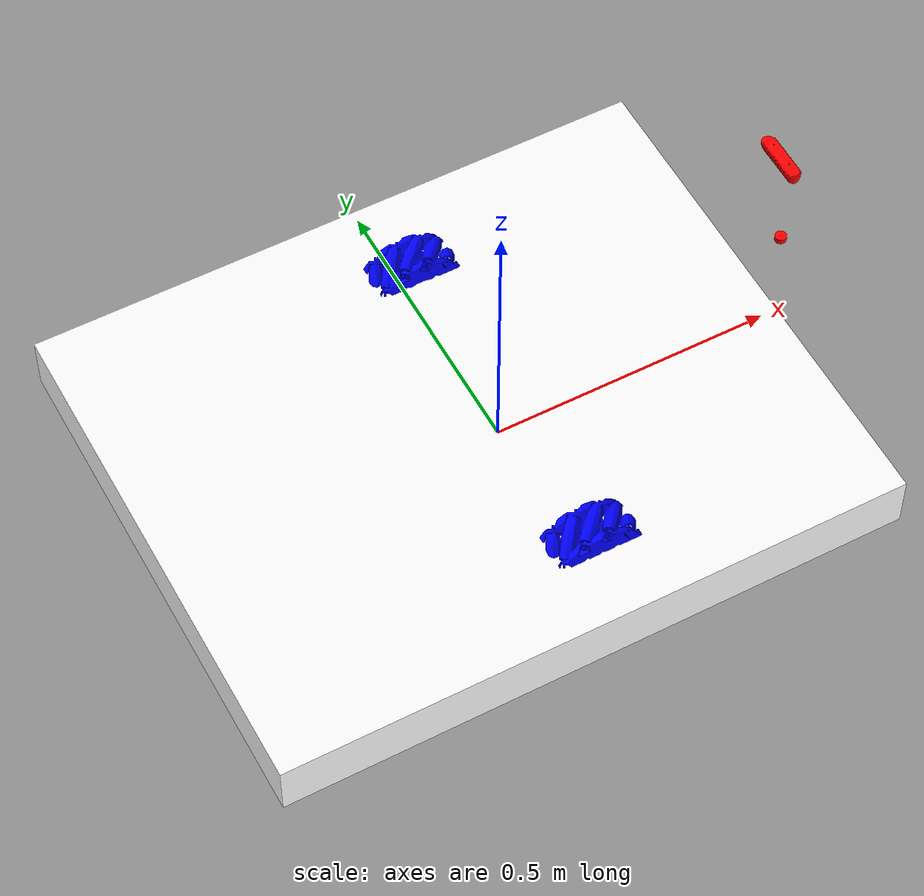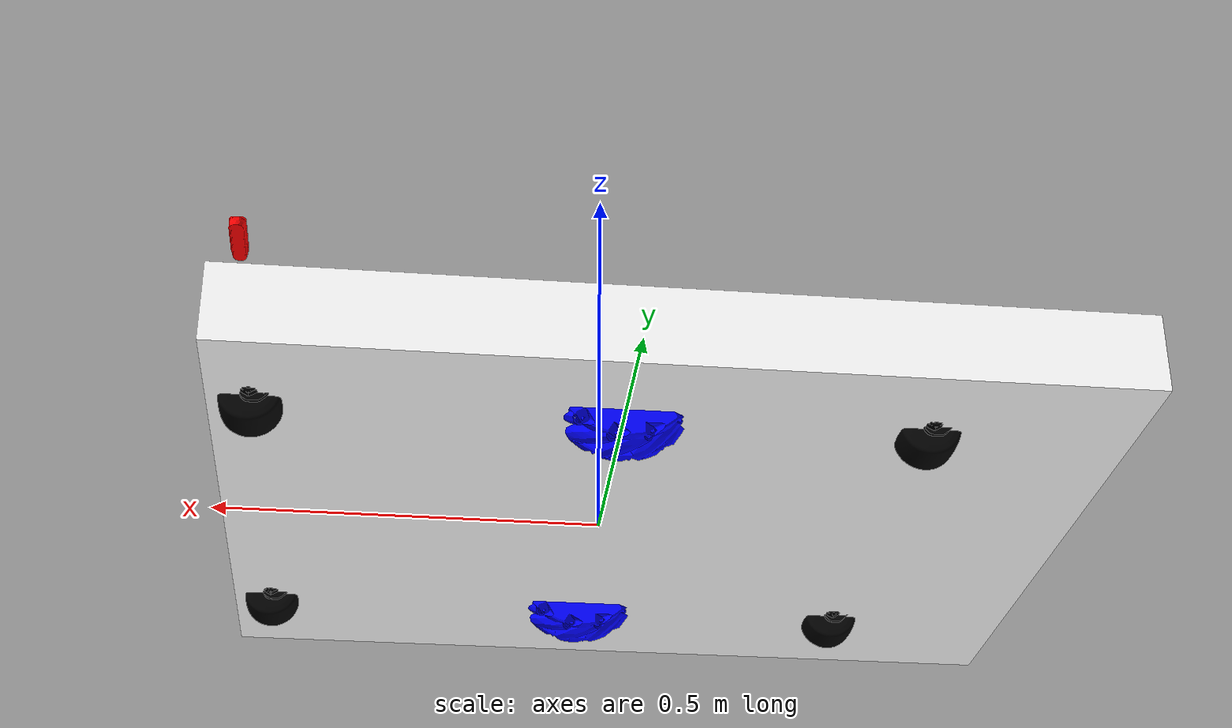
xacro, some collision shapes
<?xml version="1.0"?>
<robot xmlns:xacro="http://www.ros.org/wiki/xacro" name="robot">
  <!-- 로봇 정의에서 필요한 xacro 파일들 포함 -->
  <xacro:include filename="robot_core.xacro" />
  <xacro:include filename="gazebo_control.xacro" />
  <xacro:include filename="lidar.xacro" />
  <xacro:include filename="camera.xacro" />
</robot>

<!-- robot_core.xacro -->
<robot xmlns:xacro="http://www.ros.org/wiki/xacro" name="urdf_tutorial">

    <!-- MACROS -->
    <xacro:include filename="macros.xacro"/>

    <!-- COLOR -->
    <material name="white">
        <color rgba="1 1 1 1" />
    </material>

    <material name="blue">
        <color rgba="0 0 1 1"/>
    </material>

    <material name="black">
        <color rgba="0 0 0 1"/>
    </material>

    <material name="red">
        <color rgba="1 0 0 1"/>
    </material>

    <!-- BASE LINK -->
    <link name="base_link">
    </link>
    <!--BASE_FOOTPRINT LINK-->
    <joint name="base_footprint_joint" type="fixed">
        <parent link="base_link"/>
        <child link="base_footprint"/>
        <origin xyz="0 0 0" rpy="0 0 0"/>
    </joint>
    <link name="base_footprint"></link>

    <!-- BODY LINK -->
    <joint name="body_joint" type="fixed">
        <parent link="base_link"/>
        <child link="body"/>
        <origin xyz="0 0 0"/>
    </joint>

    <link name="body">
        <visual>
            <origin xyz="0.0 0 0.13"/>

            <geometry>
                <mesh filename="package://my_robot_description/meshes/bases/Main.stl" scale="0.01 0.01 0.01"/>
            </geometry>
            <material name="white"/>
        </visual>
        <collision>
            <origin xyz="-0.064 0 0.047" rpy="0 0 0"/>
            <geometry>
                <box size="1.1 0.9 0.1"/>
            </geometry>
        </collision>
        <xacro:inertial_box mass="0.5" x="0.2" y="0.1" z="0.06">
            <origin xyz="0.0 0 0.13" rpy="0 0 0"/>
        </xacro:inertial_box>
    </link>

    <gazebo reference="body">
        <material>Gazebo/White</material>
    </gazebo>

    <!-- LEFT WHEEL LINK -->
    <joint name="left_wheel_joint" type="continuous">
        <parent link="base_link"/>
        <child link="left_wheel"/>
        <origin xyz="0 0.3 0.05" rpy="-${pi/2} 0 0" />
        <axis xyz="0 0 1"/>
    </joint>

    <link name="left_wheel">
        <visual>
            <origin xyz="0 0 0" rpy="0 -${pi/2} 0"/>
            <geometry>
                <mesh filename="package://my_robot_description/meshes/wheels/Front_left_wheel.stl" scale="0.01 0.01 0.01"/>
            </geometry>
            <material name="blue"/>
        </visual>
        <collision>
            <geometry>
                <cylinder radius="0.08" length="0.08"/>
            </geometry>
        </collision>
        <xacro:inertial_cylinder mass="0.1" length="0.03" radius="0.03">
            <origin xyz="0 0 0" rpy="0 0 0"/>
        </xacro:inertial_cylinder>
    </link>

    <gazebo reference="left_wheel">
        <material>Gazebo/Black</material>
    </gazebo>

    <!-- RIGHT WHEEL LINK -->
    <joint name="right_wheel_joint" type="continuous">
        <parent link="base_link"/>
        <child link="right_wheel"/>
        <origin xyz="0 -0.3 0.05" rpy="${pi/2} 0 0" />
        <axis xyz="0 0 -1"/>
    </joint>

    <link name="right_wheel">
        <visual>
            <origin xyz="0 0 0" rpy="0 -${pi/2} 0"/>
            <geometry>
                <mesh filename="package://my_robot_description/meshes/wheels/Front_right_wheel.stl" scale="0.01 0.01 0.01"/>
            </geometry>
            <material name="blue"/>
        </visual>
        <collision>
            <geometry>
                <cylinder radius="0.08" length="0.08"/>
            </geometry>
        </collision>
        <xacro:inertial_cylinder mass="0.1" length="0.03" radius="0.03">
            <origin xyz="0 0 0" rpy="0 0 0"/>
        </xacro:inertial_cylinder>
    </link>

    <gazebo reference="right_wheel">
        <material>Gazebo/Black</material>
    </gazebo>

    <!-- CASTER WHEEL1 LINK -->
    <joint name="caster_wheel1_joint" type="fixed">
        <parent link="body"/>
        <child link="caster1_wheel"/>
        <origin xyz="0.4 0.3 0"/>
    </joint>

    <link name="caster1_wheel">
        <visual>
            <origin xyz="0 0 0.08" rpy="0 0 0"/>
            <geometry>
                <mesh filename="package://my_robot_description/meshes/castor.stl" scale="0.01 0.01 0.01"/>
                <sphere radius="0.03"/>
            </geometry>
            <material name="black"/>
        </visual>
        <collision>
            <geometry>
                <sphere radius="0.03"/>
            </geometry>
        </collision>
        <xacro:inertial_sphere mass="0.1" radius="0.03">
            <origin xyz="0 0 0" rpy="0 0 0"/>
        </xacro:inertial_sphere>
    </link>

    <gazebo reference="caster1_wheel">
        <material>Gazebo/Blue</material>

        <mu1 value="0.001"/>
        <mu2 value="0.001"/>
    </gazebo>

    <!-- CASTER WHEEL2 front LINK -->
    <joint name="caster_wheel2_joint" type="fixed">
        <parent link="body"/>
        <child link="caster2_wheel"/>
        <origin xyz="0.4 -0.3 0"/>
    </joint>

    <link name="caster2_wheel">
        <visual>
            <origin xyz="0 0 0.08" rpy="0 0 0"/>
            <geometry>
                <mesh filename="package://my_robot_description/meshes/castor.stl" scale="0.01 0.01 0.01"/>
                <sphere radius="0.03"/>
            </geometry>
            <material name="black"/>
        </visual>
        <collision>
            <geometry>
                <sphere radius="0.03"/>
            </geometry>
        </collision>
        <xacro:inertial_sphere mass="0.1" radius="0.03">
            <origin xyz="0 0 0" rpy="0 0 0"/>
        </xacro:inertial_sphere>
    </link>

    <gazebo reference="caster2_wheel">
        <material>Gazebo/Blue</material>

        <mu1 value="0.001"/>
        <mu2 value="0.001"/>
    </gazebo>

    <!-- CASTER WHEEL3 LINK -->
    <joint name="caster_wheel3_joint" type="fixed">
        <parent link="body"/>
        <child link="caster3_wheel"/>
        <origin xyz="-0.4 0.3 0"/>
    </joint>

    <link name="caster3_wheel">
        <visual>
            <origin xyz="0 0 0.08" rpy="0 0 0"/>
            <geometry>
                <mesh filename="package://my_robot_description/meshes/castor.stl" scale="0.01 0.01 0.01"/>
                <sphere radius="0.03"/>
            </geometry>
            <material name="black"/>
        </visual>
        <collision>
            <geometry>
                <sphere radius="0.03"/>
            </geometry>
        </collision>
        <xacro:inertial_sphere mass="0.1" radius="0.03">
            <origin xyz="0 0 0" rpy="0 0 0"/>
        </xacro:inertial_sphere>
    </link>

    <gazebo reference="caster3_wheel">
        <material>Gazebo/Blue</material>

        <mu1 value="0.001"/>
        <mu2 value="0.001"/>
    </gazebo>

    <!-- CASTER WHEEL4 LINK -->
    <joint name="caster_wheel4_joint" type="fixed">
        <parent link="body"/>
        <child link="caster4_wheel"/>
        <origin xyz="-0.4 -0.3 0"/>
    </joint>

    <link name="caster4_wheel">
        <visual>
            <origin xyz="0 0 0.08" rpy="0 0 0"/>
            <geometry>
                <mesh filename="package://my_robot_description/meshes/castor.stl" scale="0.01 0.01 0.01"/>
                <sphere radius="0.03"/>
            </geometry>
            <material name="black"/>
        </visual>
        <collision>
            <geometry>
                <sphere radius="0.03"/>
            </geometry>
        </collision>
        <xacro:inertial_sphere mass="0.1" radius="0.03">
            <origin xyz="0 0 0" rpy="0 0 0"/>
        </xacro:inertial_sphere>
    </link>

    <gazebo reference="caster4_wheel">
        <material>Gazebo/Blue</material>

        <mu1 value="0.001"/>
        <mu2 value="0.001"/>
    </gazebo>

    <!-- LiDAR -->
    <joint name="laser_joint" type="fixed">
        <parent link="body"/>
        <child link="laser_frame"/>
        <origin xyz="0.52 0 0.2" rpy="0 0 0"/>
    </joint>

    <link name="laser_frame">
        <visual>
            <origin xyz="0 0 0" rpy="0 0 0"/>
            <geometry>
                <cylinder radius="0.01" length="0.01"/>
            </geometry>
            <material name="red"/>
        </visual>
        <collision>
            <geometry>
                <cylinder radius="0.01" length="0.01"/>
            </geometry>
        </collision>
        <xacro:inertial_cylinder mass="0.1" length="0.01" radius="0.01">
            <origin xyz="0 0 0" rpy="0 0 0"/>
        </xacro:inertial_cylinder>
    </link>

    <!-- CAMERA -->
    <joint name="camera_joint" type="fixed">
        <parent link="body"/>
        <child link="camera_link"/>
        <origin xyz="0.5 0 0.4" rpy="0 0 0"/>
    </joint>

    <link name="camera_link">
        <visual>
            <origin xyz="0 0 0" rpy="${pi} -${pi/2} ${1*pi/2}"/>
            <geometry>
                <mesh filename="package://my_robot_description/meshes/camera.stl" scale="0.01 0.01 0.01"/>
                <box size="0.01 0.03 0.01"/>
            </geometry>
            <material name="red"/>
        </visual>
        <collision>
            <geometry>
                <box size="0.01 0.03 0.01"/>
            </geometry>
        </collision>

    </link>

    <joint name="camera_optical_joint" type="fixed">
        <parent link="camera_link"/>
        <child link="camera_link_optical"/>
        <origin xyz="0 0 0" rpy="${-pi/2} 0 ${-pi/2}"/>
    </joint>

    <link name="camera_link_optical">
    </link>

    <!-- GAZEBO -->

</robot>
